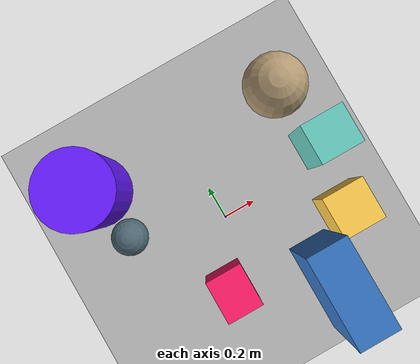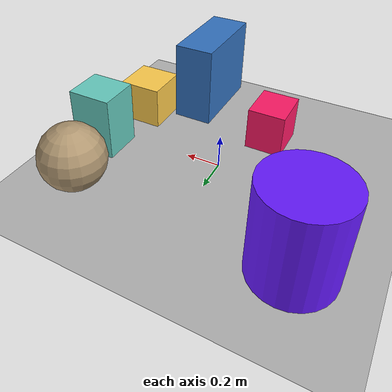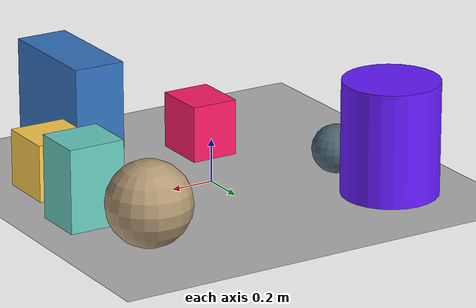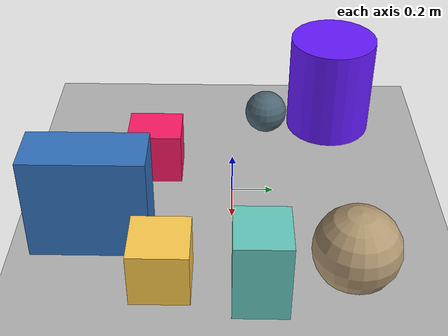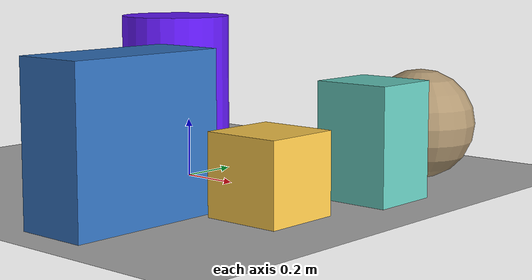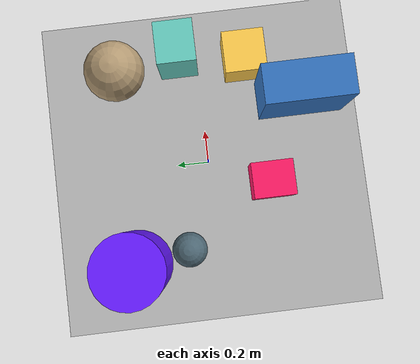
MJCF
<mujoco>
   <asset>
<texture type="skybox" builtin="gradient" rgb1="0.7 0.4 0.1" rgb2="0.5 0.9 0.2" width="256" height="256"/>
<texture name="checker_0" builtin="checker" rgb1="0.3 0.1 0.3" rgb2="0.3 0.7 0.6" width="200" height="200"/>
<texture name="checker_1" builtin="checker" rgb1="0.2 0.3 0.9" rgb2="0.2 0.6 0.6" width="200" height="200"/>
<texture name="checker_2" builtin="checker" rgb1="0.4 0.2 0.2" rgb2="1.0 1.0 0.7" width="200" height="200"/>
<texture name="flat_3" builtin="flat" rgb1="1.0 0.1 0.4" rgb2="1.0 0.1 0.4"  width="200" height="200"/>
<texture name="flat_4" builtin="flat" rgb1="0.4 0.1 1.0" rgb2="0.4 0.1 1.0"  width="200" height="200"/>
<texture name="checker_5" builtin="checker" rgb1="0.6 0.8 0.6" rgb2="0.2 0.8 0.9" width="200" height="200"/>
<texture name="flat_6" builtin="flat" rgb1="1.0 0.8 0.3" rgb2="1.0 0.8 0.3"  width="200" height="200"/><material name="checker_0_mat" reflectance="0" texrepeat="10 10" texture="checker_0" texuniform="false" />
<material name="checker_1_mat" reflectance="0" texrepeat="10 10" texture="checker_1" texuniform="false" />
<material name="checker_2_mat" reflectance="0" texrepeat="5 5" texture="checker_2" texuniform="false" />
<material name="flat_3_mat" reflectance="0" texture="flat_3" texuniform="true"/>
<material name="flat_4_mat" reflectance="0" texture="flat_4" texuniform="true"/>
<material name="checker_5_mat" reflectance="0" texrepeat="10 10" texture="checker_5" texuniform="false" />
<material name="flat_6_mat" reflectance="0" texture="flat_6" texuniform="true"/>
   </asset>

   <worldbody>
      <light diffuse=".9 .9 .9" pos="0 0 3" dir="0 0 -1"/>
     <geom type="plane" size="1 1 0.1" rgba="0.7 0.7 0.7 1"/>
<geom type="sphere" pos="-0.54 0.18 0.11" size="0.11 0.11 0.11" material="checker_0_mat" />
<geom type="box" pos="0.36 -0.63 0.25" size="0.12 0.27 0.25" material="checker_1_mat" />
<geom type="sphere" pos="0.62 0.52 0.19" size="0.19 0.19 0.19" material="checker_2_mat" />
<geom type="box" pos="-0.17 -0.38 0.13" size="0.11 0.13 0.13" material="flat_3_mat" />
<geom type="cylinder" pos="-0.6 0.52 0.26" size="0.22 0.26 0.26" material="flat_4_mat" />
<geom type="box" pos="0.71 0.12 0.19" size="0.13 0.12 0.19" material="checker_5_mat" />
<geom type="box" pos="0.64 -0.3 0.13" size="0.13 0.13 0.13" material="flat_6_mat" /><camera euler="60 0 180" fovy="60" name="camera_a" pos="0 -1.5 1"></camera>   </worldbody>
</mujoco>
